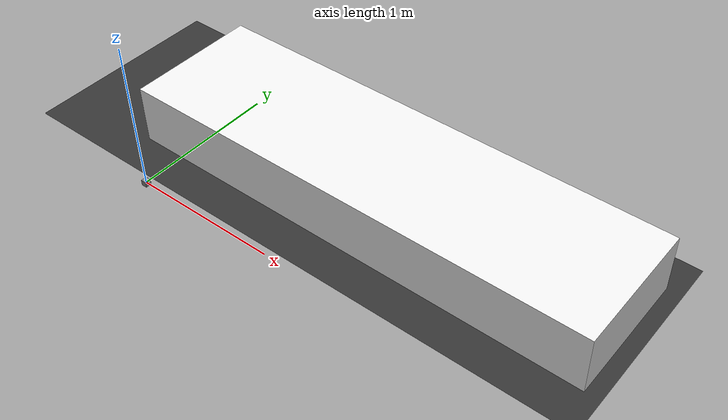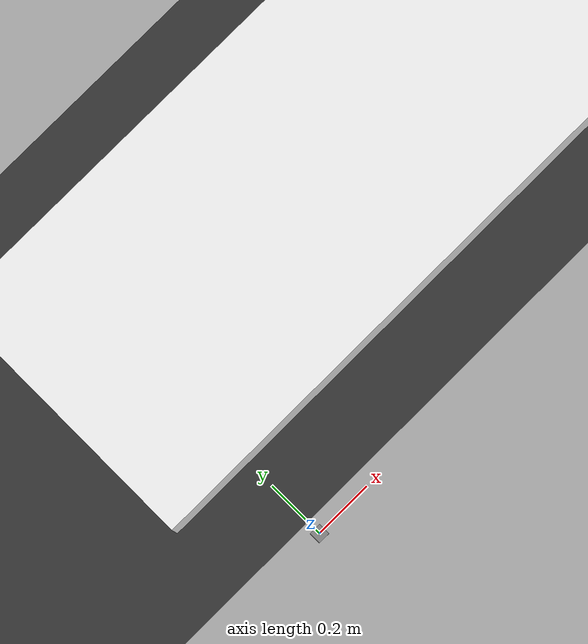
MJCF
<?xml version="1.0" encoding="utf-8"?>
<mujoco>
	<compiler angle="radian" coordinate="local" meshdir="../stls/fetch" texturedir="../textures"></compiler>
	<option timestep="0.002">
		<flag warmstart="enable"></flag>
	</option>
	<asset>
		<texture type="skybox" builtin="gradient" rgb1="0.44 0.85 0.56" rgb2="0.46 0.87 0.58" width="32" height="32"></texture>
        <texture name="texture_block" file="block.png" gridsize="3 4" gridlayout=".U..LFRB.D.."></texture>

        <material name="floor_mat" specular="0" shininess="0.5" reflectance="0" rgba="0.2 0.2 0.2 1"></material>
        <material name="table_mat" specular="0" shininess="0.5" reflectance="0" rgba="0.93 0.93 0.93 1"></material>
        <material name="block_mat" specular="0" shininess="0.5" reflectance="0" rgba="0.2 0.2 0.2 1"></material>
        <material name="puck_mat" specular="0" shininess="0.5" reflectance="0" rgba="0.2 0.2 0.2 1"></material>
	</asset>

	<worldbody>
		<geom name="floor0" pos="1 0.75 0" size="2.05 0.7 1" type="plane" condim="3" material="floor_mat"></geom>

		<body name="table0" pos="1.32441906 0.75018422 0.2">
			<geom size="1.625 0.45 0.2" type="box" condim="3" name="table0" material="table_mat" mass="2000" friction="1.0 0.005 0.0001"></geom>
		</body>

      <body name="object0" pos="0 0 0">
         <joint type="free"/>
         <geom name="sphere_geom" size="0.02 0.02 0.02" type="box"/>
      </body>

		<light directional="true" ambient="0.2 0.2 0.2" diffuse="0.8 0.8 0.8" specular="0.3 0.3 0.3" castshadow="false" pos="0 0 4" dir="0 0 -1" name="light0"></light>
	</worldbody>

	<actuator></actuator>
</mujoco>
